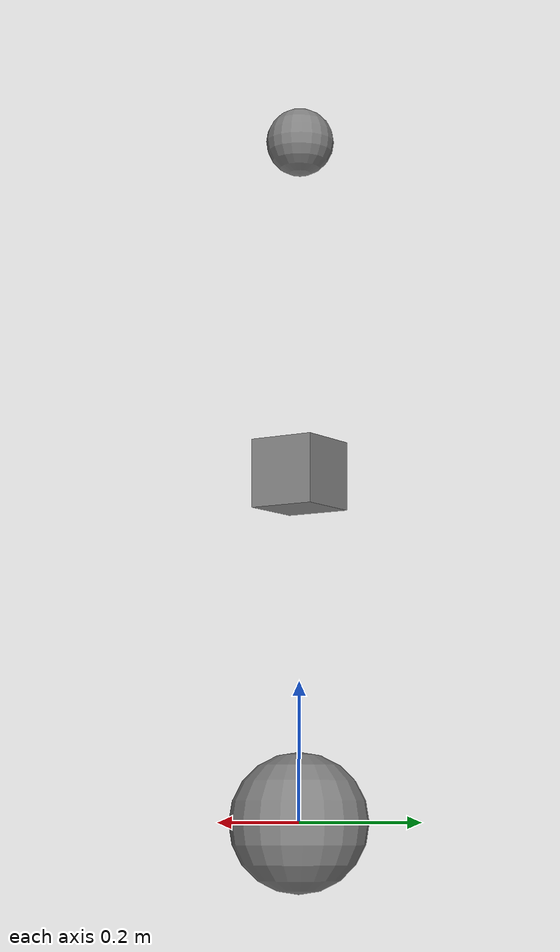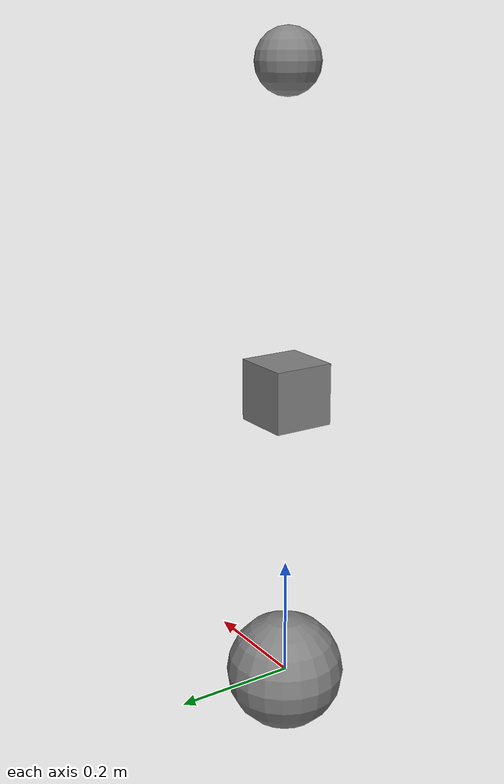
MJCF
<mujoco>
                <compiler fusestatic="true"/>
                <worldbody>
                    <body name="parent" pos="0 0 0">
                        <joint name="j1" type="hinge" axis="0 0 1"/>
                        <geom type="sphere" size="0.1"/>
                        <body name="actuator_target" pos="0 0 0.5">
                            <geom type="box" size="0.05 0.05 0.05"/>
                        </body>
                        <body name="unprotected" pos="0 0 1">
                            <geom type="sphere" size="0.05"/>
                        </body>
                    </body>
                </worldbody>
                <actuator>
                    <adhesion name="stick" body="actuator_target" gain="1"/>
                </actuator>
            </mujoco>
